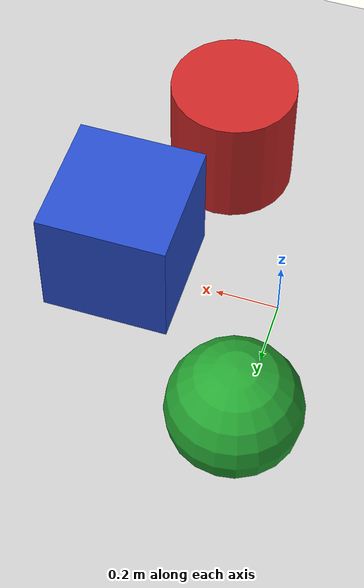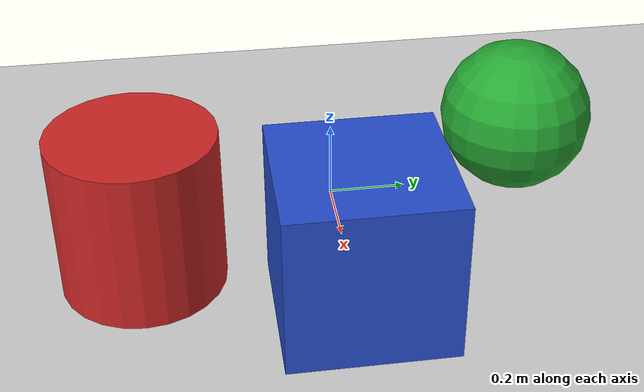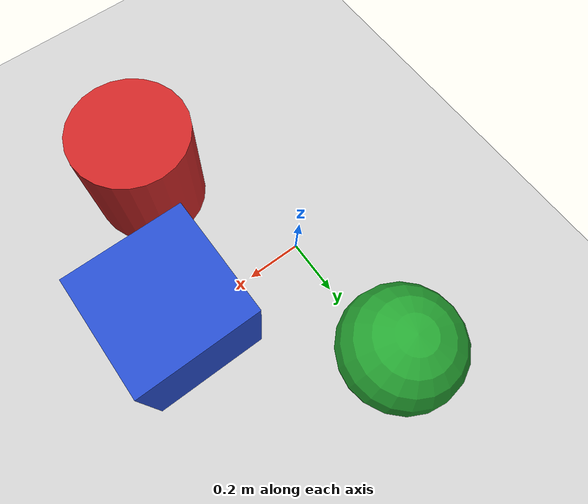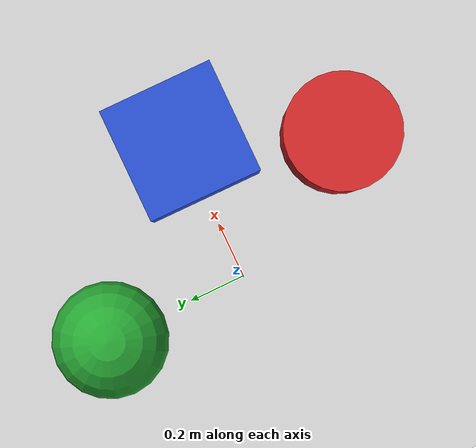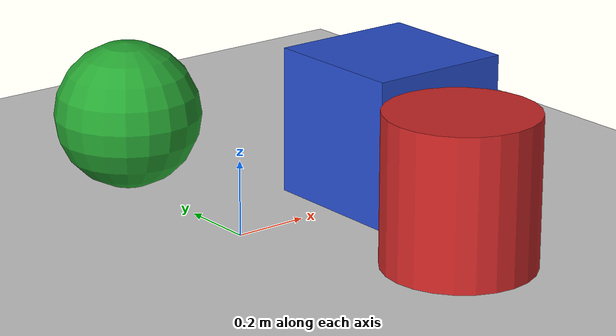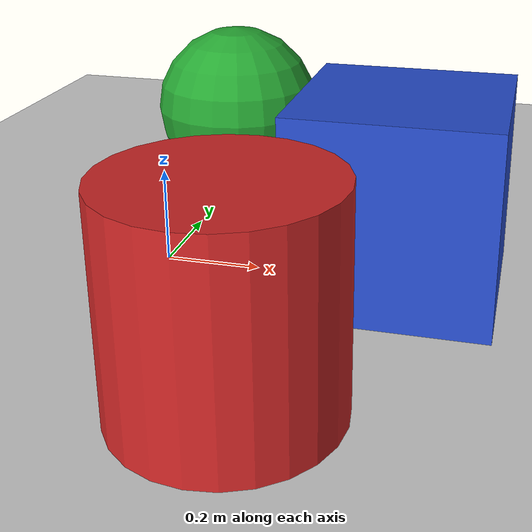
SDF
<?xml version="1.0" ?>
<sdf version="1.5">
  <world name="dual_camera_world">
    <!-- A global light source -->
    <include>
      <uri>model://sun</uri>
    </include>

    <!-- A ground plane -->
    <include>
      <uri>model://ground_plane</uri>
    </include>

    <!-- Add some basic shapes to test point cloud capture -->
    <model name="box1">
      <pose>0.5 0 0.2 0 0 0</pose>
      <link name="link">
        <collision name="collision">
          <geometry>
            <box>
              <size>0.4 0.4 0.4</size>
            </box>
          </geometry>
        </collision>
        <visual name="visual">
          <geometry>
            <box>
              <size>0.4 0.4 0.4</size>
            </box>
          </geometry>
          <material>
            <script>
              <uri>file://media/materials/scripts/gazebo.material</uri>
              <name>Gazebo/Blue</name>
            </script>
          </material>
        </visual>
      </link>
      <static>true</static>
    </model>

    <model name="cylinder1">
      <pose>0.3 -0.5 0.2 0 0 0</pose>
      <link name="link">
        <collision name="collision">
          <geometry>
            <cylinder>
              <radius>0.2</radius>
              <length>0.4</length>
            </cylinder>
          </geometry>
        </collision>
        <visual name="visual">
          <geometry>
            <cylinder>
              <radius>0.2</radius>
              <length>0.4</length>
            </cylinder>
          </geometry>
          <material>
            <script>
              <uri>file://media/materials/scripts/gazebo.material</uri>
              <name>Gazebo/Red</name>
            </script>
          </material>
        </visual>
      </link>
      <static>true</static>
    </model>

    <model name="sphere1">
      <pose>0 0.5 0.2 0 0 0</pose>
      <link name="link">
        <collision name="collision">
          <geometry>
            <sphere>
              <radius>0.2</radius>
            </sphere>
          </geometry>
        </collision>
        <visual name="visual">
          <geometry>
            <sphere>
              <radius>0.2</radius>
            </sphere>
          </geometry>
          <material>
            <script>
              <uri>file://media/materials/scripts/gazebo.material</uri>
              <name>Gazebo/Green</name>
            </script>
          </material>
        </visual>
      </link>
      <static>true</static>
    </model>

    <!-- Physics settings -->
    <physics type="ode">
      <real_time_update_rate>1000.0</real_time_update_rate>
      <max_step_size>0.001</max_step_size>
      <real_time_factor>1</real_time_factor>
      <ode>
        <solver>
          <type>quick</type>
          <iters>150</iters>
          <precon_iters>0</precon_iters>
          <sor>1.400000</sor>
          <use_dynamic_moi_rescaling>1</use_dynamic_moi_rescaling>
        </solver>
        <constraints>
          <cfm>0.00001</cfm>
          <erp>0.2</erp>
          <contact_max_correcting_vel>2000.000000</contact_max_correcting_vel>
          <contact_surface_layer>0.01000</contact_surface_layer>
        </constraints>
      </ode>
    </physics>

    <!-- Scene settings -->
    <scene>
      <ambient>0.4 0.4 0.4 1</ambient>
      <background>0.7 0.7 0.7 1</background>
      <shadows>true</shadows>
    </scene>
  </world>
</sdf>
